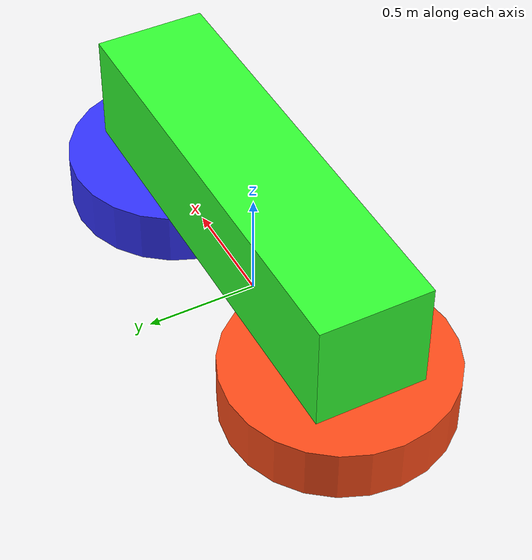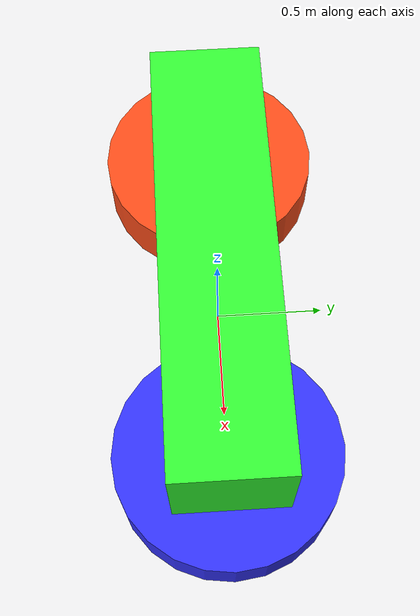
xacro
<?xml version="1.0"?>
<robot xmlns:xacro="http://www.ros.org/wiki/xacro" name="bluetech_robot">

    <!-- This will include all the contents of example_include.xacro first. -->
    <xacro:include filename="basic_macros.xacro" />
    <xacro:include filename="gazebo_control.xacro" />
    <xacro:include filename="ros2_control.xacro" />
    <xacro:include filename="lidar.xacro" />

    <link name="base_footprint" />

    <joint name="base_footprint_to_chassis_link" type="fixed">
        <origin xyz="0 0 0.5" rpy="0 0 0" />
        <parent link="base_footprint" />
        <child link="chassis_link" />
    </joint>

    <link name="chassis_link">
        <visual>
            <origin xyz="0 0 0" rpy="0 0 0" />
            <geometry>
                <box size="2 0.5 0.5" />
            </geometry>
            <material name="green">
                <color rgba="0.2 1 0.2 1" />
            </material>
        </visual>
        <collision>
            <origin xyz="0 0 0" rpy="0 0 0" />
            <geometry>
                <box size="2 0.5 0.5" />
            </geometry>
        </collision>
        <inertial>
            <origin xyz="0 0 0" rpy="0 0 0" />
            <mass value="1.0" />
            <inertia ixx="2.26" ixy="0.0" ixz="0.0" iyy="6.26" iyz="0.0" izz="8.5" />
        </inertial>
    </link>

    <!-- RIGHT WHEEL -->
    <!-- Right Wheel Joint -->
    <joint name="right_wheel_joint" type="revolute">
        <origin xyz="0.75 0 -0.375" rpy="0 0 0" />
        <parent link="chassis_link" />
        <child link="right_wheel_link" />
        <axis xyz="0 0 1" />
        <limit lower='-3140000000' upper='3140000000' velocity="100" effort="100" />
    </joint>

    <!-- Right Wheel Link -->
    <link name="right_wheel_link">
        <visual>
            <origin xyz="0 0 0" rpy="0 0 0" />
            <geometry>
                <cylinder radius="0.5" length="0.25" />
            </geometry>
            <material name="blue" />
        </visual>
        <collision>
            <origin xyz="0 0 0" rpy="0 0 0" />
            <geometry>
                <cylinder radius="0.5" length="0.25" />
            </geometry>
        </collision>
        <xacro:inertial_cylinder mass="0.5" length="0.5" radius="0.25">
            <origin xyz="0 0 0" rpy="1.57 0 1.57" />
        </xacro:inertial_cylinder>
    </link>

    <!-- LEFT WHEEL -->
    <!-- Left Wheel Joint -->
    <joint name="left_wheel_joint" type="revolute">
        <origin xyz="-0.75 0 -0.375" rpy="0 0 0" />
        <parent link="chassis_link" />
        <child link="left_wheel_link" />
        <axis xyz="0 0 1" />
        <limit lower='-3140000000' upper='3140000000' velocity="100" effort="100" />
    </joint>

    <!-- Left Wheel Link -->
    <link name="left_wheel_link">
        <visual>
            <origin xyz="0 0 0" rpy="0 0 0" />
            <geometry>
                <cylinder radius="0.5" length="0.25" />
            </geometry>
            <material name="orange" />
        </visual>
        <collision>
            <origin xyz="0 0 0" rpy="0 0 0" />
            <geometry>
                <cylinder radius="0.5" length="0.25" />
            </geometry>
        </collision>
        <xacro:inertial_cylinder mass="0.5" length="0.5" radius="0.25">
            <origin xyz="0 0 0" rpy="1.57 0 1.57" />
        </xacro:inertial_cylinder>
    </link>

</robot>

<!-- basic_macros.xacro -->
<robot xmlns:xacro="http://www.ros.org/wiki/xacro">

    <!-- Specify some colours -->

    <material name="white">
        <color rgba="1 1 1 1" />
    </material>

    <material name="orange">
        <color rgba="1 0.3 0.1 1" />
    </material>

    <material name="blue">
        <color rgba="0.2 0.2 1 1" />
    </material>

    <material name="red">
        <color rgba="1 0 0 1" />
    </material>

    <xacro:macro name="inertial_sphere" params="mass radius *origin">
        <inertial>
            <xacro:insert_block name="origin" />
            <mass value="${mass}" />
            <inertia ixx="${(2/5) * mass * (radius*radius)}" ixy="0.0" ixz="0.0"
                iyy="${(2/5) * mass * (radius*radius)}" iyz="0.0"
                izz="${(2/5) * mass * (radius*radius)}" />
        </inertial>
    </xacro:macro>

    <xacro:macro name="inertial_box" params="mass x y z *origin">
        <inertial>
            <xacro:insert_block name="origin" />
            <mass value="${mass}" />
            <inertia ixx="${(1/12) * mass * (y*y+z*z)}" ixy="0.0" ixz="0.0"
                iyy="${(1/12) * mass * (x*x+z*z)}" iyz="0.0"
                izz="${(1/12) * mass * (x*x+y*y)}" />
        </inertial>
    </xacro:macro>

    <xacro:macro name="inertial_cylinder" params="mass length radius *origin">
        <inertial>
            <xacro:insert_block name="origin" />
            <mass value="${mass}" />
            <inertia ixx="${(1/12) * mass * (3*radius*radius + length*length)}" ixy="0.0" ixz="0.0"
                iyy="${(1/12) * mass * (3*radius*radius + length*length)}" iyz="0.0"
                izz="${(1/2) * mass * (radius*radius)}" />
        </inertial>
    </xacro:macro>

</robot>

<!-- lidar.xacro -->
<robot xmlns:xacro="http://www.ros.org/wiki/xacro">

    <joint name="laser_joint" type="fixed">
        <parent link="chassis_link" />
        <child link="laser_frame" />
        <origin xyz="0 0 -0.27" rpy="0 1.5708 0" />
    </joint>

    <link name="laser_frame">
        <visual>
            <geometry>
                <cylinder radius="0.05" length="0.04" />
            </geometry>
            <material name="red" />
        </visual>
        <collision>
            <geometry>
                <cylinder radius="0.05" length="0.04" />
            </geometry>
        </collision>
        <xacro:inertial_cylinder mass="0.1" length="0.04" radius="0.05">
            <origin xyz="0 0 0" rpy="0 0 0" />
        </xacro:inertial_cylinder>
    </link>

    <gazebo reference="laser_frame">
        <material>Gazebo/Red</material>

        <sensor name="laser" type="ray">
            <pose> 0 0 0 0 0 0 </pose>
            <visualize>true</visualize>
            <update_rate>100</update_rate>
            <ray>
                <scan>
                    <horizontal>
                        <samples>1</samples>
                        <min_angle>-0.01</min_angle>
                        <max_angle>0.01</max_angle>
                    </horizontal>
                </scan>
                <range>
                    <min>0.1</min>
                    <max>10.0</max>
                </range>
            </ray>
            <plugin name="laser_controller" filename="libgazebo_ros_ray_sensor.so">
                <ros>
                    <argument>~/out:=scan</argument>
                </ros>
                <output_type>sensor_msgs/LaserScan</output_type>
                <frame_name>laser_frame</frame_name>
            </plugin>
        </sensor>
    </gazebo>

</robot>
